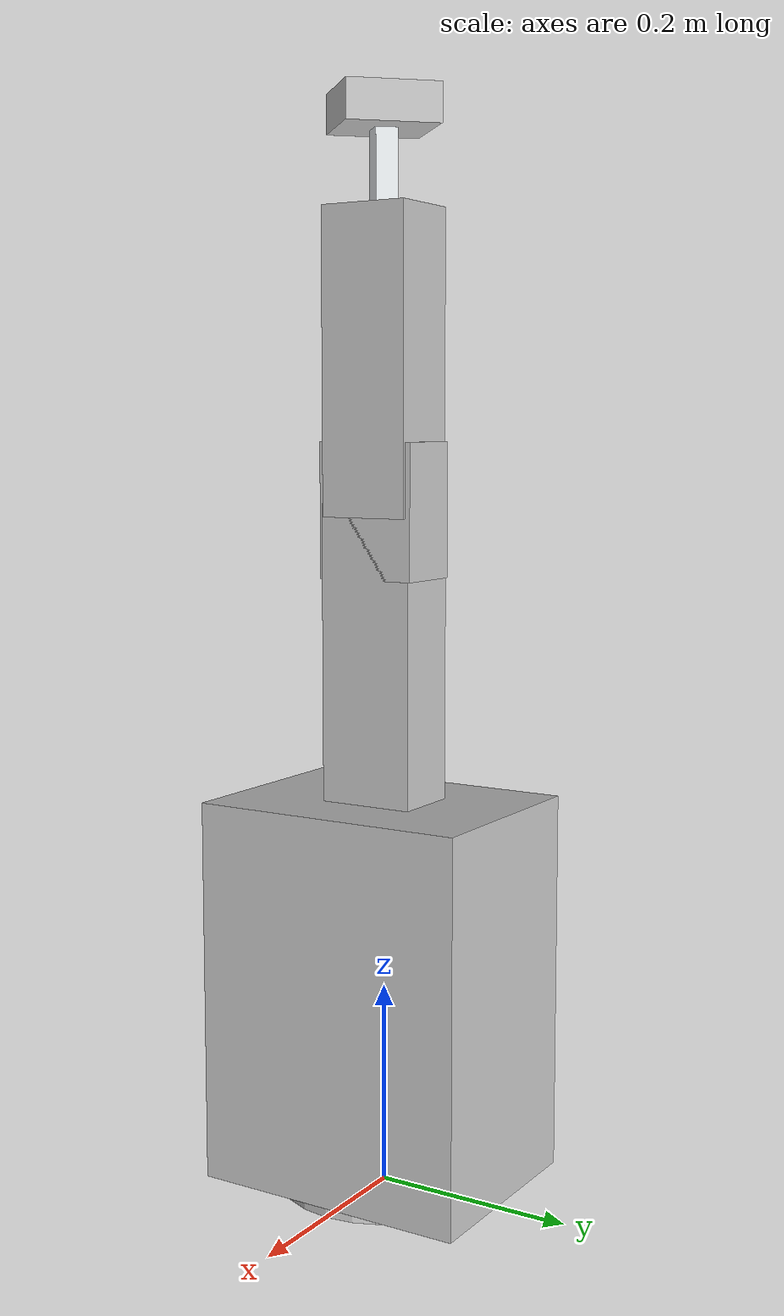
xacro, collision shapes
<?xml version='1.0' encoding='utf-8'?>
<robot name="pi_arm" xmlns:xacro="http://www.ros.org/wiki/xacro">
  <xacro:arg name="backend" default="mock" />
  <xacro:arg name="can_interface" default="can0" />
  <xacro:arg name="bitrate" default="1000000" />
  <xacro:arg name="cable_kinematics_file" default="" />
  <xacro:arg name="calibration_file" default="" />
  <xacro:arg name="allow_real_control" default="false" />
  <link name="base_link">
    <inertial>
      <origin xyz="1.42472010167261E-06 -3.11862123503204E-06 0.0143168199324528" rpy="0 0 0" />
      <mass value="0.437146988968639" />
      <inertia ixx="0.00101549353025633" ixy="-8.85186107150038E-09" ixz="-2.30598700637041E-08" iyy="0.00101550886129705" iyz="5.04809646724767E-08" izz="0.00187640671534589" />
    </inertial>
    <visual>
      <origin xyz="0 0 0" rpy="0 0 0" />
      <geometry>
        <mesh filename="package://pi_arm_description/meshes/base_link.STL" />
      </geometry>
      <material name="">
        <color rgba="0.752941176470588 0.752941176470588 0.752941176470588 1" />
      </material>
    </visual>
    <!-- Collision uses primitives sized from the measured mesh bounding boxes
         plus safety padding; visuals keep the detailed meshes. -->
    <collision>
      <origin xyz="0 0 0.058" rpy="0 0 0" />
      <geometry>
        <cylinder radius="0.105" length="0.116" />
      </geometry>
    </collision>
  </link>
  <link name="link_01">
    <inertial>
      <origin xyz="-0.00282075102215007 -0.00267015187330855 -0.181622628093423" rpy="0 0 0" />
      <mass value="4.85458202644537" />
      <inertia ixx="0.0191507453049761" ixy="2.38055435310266E-06" ixz="4.37834657210041E-05" iyy="0.0309252869482786" iyz="2.25650088980048E-06" izz="0.0145713382885925" />
    </inertial>
    <visual>
      <origin xyz="0 0 0" rpy="0 0 0" />
      <geometry>
        <mesh filename="package://pi_arm_description/meshes/link_01.STL" />
      </geometry>
      <material name="">
        <color rgba="0.752941176470588 0.752941176470588 0.752941176470588 1" />
      </material>
    </visual>
    <collision>
      <origin xyz="0 -0.003 -0.155" rpy="0 0 0" />
      <geometry>
        <box size="0.21 0.28 0.38" />
      </geometry>
    </collision>
  </link>
  <joint name="joint_01" type="revolute">
    <origin xyz="0 0 0.3535" rpy="0 0 0" />
    <parent link="base_link" />
    <child link="link_01" />
    <axis xyz="0 0 1" />
    <limit lower="-3.141592654" upper="3.141592654" effort="20.0" velocity="0.1745329" />
  </joint>
  <link name="link_02">
    <inertial>
      <origin xyz="0.149552387579736 -2.38368135674349E-06 0.000115838118225575" rpy="0 0 0" />
      <mass value="0.252724923080001" />
      <inertia ixx="7.5212562952318E-05" ixy="5.6077092964539E-13" ixz="-4.49687933359973E-14" iyy="0.00209421434394839" iyz="2.77537066267243E-09" izz="0.00215753391787547" />
    </inertial>
    <visual>
      <origin xyz="0 0 0" rpy="0 0 0" />
      <geometry>
        <mesh filename="package://pi_arm_description/meshes/link_02.STL" />
      </geometry>
      <material name="">
        <color rgba="0.752941176470588 0.752941176470588 0.752941176470588 1" />
      </material>
    </visual>
    <collision>
      <origin xyz="0.144 0 0" rpy="0 0 0" />
      <geometry>
        <box size="0.36 0.07 0.096" />
      </geometry>
    </collision>
  </link>
  <joint name="joint_02" type="revolute">
    <origin xyz="0 0 0" rpy="1.5708 -1.5708 0" />
    <parent link="link_01" />
    <child link="link_02" />
    <axis xyz="0 0 1" />
    <!-- Operator-confirmed +/-100.7 deg; packing pose lies on this boundary. -->
    <limit lower="-1.757546556759" upper="1.757546556759" effort="20.0" velocity="0.1745329" />
  </joint>
  <link name="link_03">
    <inertial>
      <origin xyz="0.0322098876561692 -4.02280392154397E-05 0.00206169265337586" rpy="0 0 0" />
      <mass value="0.185861917056894" />
      <inertia ixx="4.50771310773376E-05" ixy="2.57293516949686E-14" ixz="-2.926245359696E-14" iyy="9.13136227274224E-05" iyz="1.39667484142062E-09" izz="0.000123174175509638" />
    </inertial>
    <visual>
      <origin xyz="0 0 0" rpy="3.14159265 0 0" />
      <geometry>
        <mesh filename="package://pi_arm_description/meshes/link_03.STL" />
      </geometry>
      <material name="">
        <color rgba="0.752941176470588 0.752941176470588 0.752941176470588 1" />
      </material>
    </visual>
    <collision>
      <origin xyz="0.0295 0 0" rpy="0 0 0" />
      <geometry>
        <box size="0.13 0.07 0.10" />
      </geometry>
    </collision>
  </link>
  <joint name="joint_03" type="revolute">
    <origin xyz="0.288 0 0" rpy="0 0 0" />
    <parent link="link_02" />
    <child link="link_03" />
    <axis xyz="0 0 1" />
    <mimic joint="joint_04" multiplier="1.0" offset="0.0" />
    <limit lower="-1.494001839708" upper="1.494001839708" effort="20.0" velocity="0.1745329" />
  </joint>
  <link name="link_04">
    <inertial>
      <origin xyz="0.109964336929613 0.000229257464003596 0.000975015270539004" rpy="0 0 0" />
      <mass value="0.260875641620697" />
      <inertia ixx="7.01626086374675E-05" ixy="6.34918048907996E-10" ixz="-7.24863801376475E-08" iyy="0.000872456719719079" iyz="1.41337794056613E-08" izz="0.00088511392160595" />
    </inertial>
    <visual>
      <origin xyz="0 0 0" rpy="0 0 0" />
      <geometry>
        <mesh filename="package://pi_arm_description/meshes/link_04.STL" />
      </geometry>
      <material name="">
        <color rgba="0.752941176470588 0.752941176470588 0.752941176470588 1" />
      </material>
    </visual>
    <collision>
      <origin xyz="0.1094 0 0" rpy="0 0 0" />
      <geometry>
        <box size="0.29 0.076 0.09" />
      </geometry>
    </collision>
  </link>
  <joint name="joint_04" type="revolute">
    <origin xyz="0.0591 0 0" rpy="0 0 0" />
    <parent link="link_03" />
    <child link="link_04" />
    <axis xyz="0 0 1" />

    <!-- Operator-confirmed +/-85.6 deg; joint_03 mimics these limits. -->
    <limit lower="-1.494001839708" upper="1.494001839708" effort="20.0" velocity="0.1745329" />
  </joint>
  <link name="link_05">
    <inertial>
      <origin xyz="1.52202694891912E-11 -2.40738648105143E-06 -9.86147092207901E-07" rpy="0 0 0" />
      <mass value="0.000795424297196668" />
      <inertia ixx="3.07601969712487E-08" ixy="2.04491722309632E-17" ixz="-1.27781598366501E-15" iyy="1.77753013126899E-08" iyz="-3.01352534695745E-17" izz="1.7775236560225E-08" />
    </inertial>
    <visual>
      <origin xyz="0 0 0" rpy="0 0 0" />
      <geometry>
        <mesh filename="package://pi_arm_description/meshes/link_05.STL" />
      </geometry>
      <material name="">
        <color rgba="0.698039215686274 0.698039215686274 0.698039215686274 1" />
      </material>
    </visual>
    <collision>
      <origin xyz="0 0 0" rpy="0 1.5708 0" />
      <geometry>
        <cylinder radius="0.011" length="0.012" />
      </geometry>
    </collision>
  </link>
  <joint name="joint_05" type="revolute">
    <origin xyz="0.246 0 0" rpy="2.3562 0 0" />
    <parent link="link_04" />
    <child link="link_05" />
    <axis xyz="0 -1 0" />
    <limit lower="-0.523598776" upper="0.523598776" effort="10.0" velocity="0.1745329" />
  </joint>
  <link name="link_06">
    <inertial>
      <origin xyz="0.0534997515262439 -9.86578358341816E-07 2.34103792068341E-06" rpy="0 0 0" />
      <mass value="0.00635902715305591" />
      <inertia ixx="1.97178946260881E-07" ixy="-1.95938273796978E-12" ixz="-9.13341802615157E-12" iyy="5.52128514263102E-06" iyz="1.47019412241404E-12" izz="5.55951898659673E-06" />
    </inertial>
    <visual>
      <origin xyz="0 0 0" rpy="0 0 0" />
      <geometry>
        <mesh filename="package://pi_arm_description/meshes/link_06.STL" />
      </geometry>
      <material name="">
        <color rgba="0.898039215686275 0.917647058823529 0.929411764705882 1" />
      </material>
    </visual>
    <collision>
      <origin xyz="0.0535 0 0" rpy="0 0 0" />
      <geometry>
        <box size="0.12 0.028 0.021" />
      </geometry>
    </collision>
  </link>
  <joint name="joint_06" type="revolute">
    <origin xyz="0 0 0" rpy="1.5708 0 0" />
    <parent link="link_05" />
    <child link="link_06" />
    <axis xyz="0 1 0" />
    <limit lower="-1.047197551" upper="1.047197551" effort="10.0" velocity="0.1745329" />
  </joint>
  <link name="link_07">
    <inertial>
      <origin xyz="-1.52193813107715E-11 1.00472616182401E-06 2.38879559871785E-06" rpy="0 0 0" />
      <mass value="0.000795424297196684" />
      <inertia ixx="3.0760196971249E-08" ixy="2.04490912920935E-17" ixz="1.27781600766383E-15" iyy="1.77753013126897E-08" iyz="3.01352307221077E-17" izz="1.77752365602258E-08" />
    </inertial>
    <visual>
      <origin xyz="0 0 0" rpy="0 0 0" />
      <geometry>
        <mesh filename="package://pi_arm_description/meshes/link_07.STL" />
      </geometry>
      <material name="">
        <color rgba="0.698039215686274 0.698039215686274 0.698039215686274 1" />
      </material>
    </visual>
    <collision>
      <origin xyz="0 0 0" rpy="0 1.5708 0" />
      <geometry>
        <cylinder radius="0.011" length="0.012" />
      </geometry>
    </collision>
  </link>
  <joint name="joint_07" type="revolute">
    <origin xyz="0.107 0 0" rpy="0 0 3.1416" />
    <parent link="link_06" />
    <child link="link_07" />
    <axis xyz="0 -1 0" />
    <mimic joint="joint_06" multiplier="1.0" offset="0.0" />
    <limit lower="-1.047197551" upper="1.047197551" effort="10.0" velocity="0.1745329" />
  </joint>
  <link name="link_08">
    <inertial>
      <origin xyz="6.45345202288095E-05 -0.00794952282624428 -6.86960518130331E-05" rpy="0 0 0" />
      <mass value="0.03183181506874" />
      <inertia ixx="1.54470582945015E-05" ixy="-1.66181016644539E-08" ixz="-1.48500112235224E-10" iyy="2.96703522408273E-05" iyz="1.63865535609975E-08" izz="1.54636258641674E-05" />
    </inertial>
    <visual>
      <origin xyz="0 0 0" rpy="0 0 3.14159265" />
      <geometry>
        <mesh filename="package://pi_arm_description/meshes/link_08.STL" />
      </geometry>
      <material name="">
        <color rgba="0.752941176470588 0.752941176470588 0.752941176470588 1" />
      </material>
    </visual>
    <collision>
      <origin xyz="0 -0.0107 0" rpy="0 0 0" />
      <geometry>
        <box size="0.09 0.037 0.09" />
      </geometry>
    </collision>
  </link>
  <joint name="joint_08" type="revolute">
    <origin xyz="0 0 0" rpy="1.5708 -1.5708 0" />
    <parent link="link_07" />
    <child link="link_08" />
    <axis xyz="-1 0 0" />
    <mimic joint="joint_05" multiplier="-1.0" offset="0.0" />
    <limit lower="-0.523598776" upper="0.523598776" effort="10.0" velocity="0.1745329" />
  </joint>
  <link name="link_09">
    <inertial>
      <origin xyz="0 0 -0.00287664156279077" rpy="0 0 0" />
      <mass value="0.0306315731211391" />
      <inertia ixx="1.21222052001753E-05" ixy="-8.470329472543E-22" ixz="5.28439432408367E-20" iyy="1.21222052001753E-05" iyz="3.3381814248124E-20" izz="2.40376035328779E-05" />
    </inertial>
    <visual>
      <origin xyz="0 0 0.022" rpy="0 0 0" />
      <geometry>
        <mesh filename="package://pi_arm_description/meshes/link_09.STL" />
      </geometry>
      <material name="">
        <color rgba="0.792156862745098 0.819607843137255 0.933333333333333 1" />
      </material>
    </visual>
    <collision>
      <origin xyz="0 0 -0.002" rpy="0 0 0" />
      <geometry>
        <cylinder radius="0.044" length="0.012" />
      </geometry>
    </collision>
  </link>
  <joint name="joint_09" type="revolute">
    <origin xyz="0 0 0" rpy="1.5708 0 3.1416" />
    <parent link="link_08" />
    <child link="link_09" />
    <axis xyz="0 0 1" />
    <limit lower="-3.141592654" upper="3.141592654" effort="10.0" velocity="0.1745329" />
  </joint>
  <link name="tool0" />
  <joint name="tool0_fixed_joint" type="fixed">
    <parent link="link_09" />
    <child link="tool0" />
    <origin xyz="0 0 0.022" rpy="0 0 0" />
  </joint>
  <ros2_control name="PiArmSystem" type="system">
    <hardware>
      <plugin>pi_arm_hardware/PiArmSystemHardware</plugin>
      <param name="backend">$(arg backend)</param>
      <param name="can_interface">$(arg can_interface)</param>
      <param name="bitrate">$(arg bitrate)</param>
      <param name="cable_kinematics_file">$(arg cable_kinematics_file)</param>
      <param name="calibration_file">$(arg calibration_file)</param>
      <param name="allow_real_control">$(arg allow_real_control)</param>
      <param name="moving_speed_threshold_rad_s">0.00017453292519943296</param>
      <param name="state_stale_timeout_sec">1.0</param>
    </hardware>
    <joint name="joint_01">
      <param name="motor_id">1</param>
      <param name="protocol_angle_ratio">36</param>
      <param name="motor_direction">1</param>
      <command_interface name="position" />
      <command_interface name="velocity" />
      <state_interface name="position">
        <param name="initial_value">0.0</param>
      </state_interface>
      <state_interface name="velocity" />
    </joint>
    <joint name="joint_02">
      <param name="motor_id">2</param>
      <param name="protocol_angle_ratio">36</param>
      <param name="motor_direction">1</param>
      <!-- Feedback-only +/-3 deg allowance; command limits remain above. -->
      <param name="feedback_position_tolerance_rad">0.05235987755982989</param>
      <command_interface name="position" />
      <command_interface name="velocity" />
      <state_interface name="position">
        <param name="initial_value">0.0</param>
      </state_interface>
      <state_interface name="velocity" />
    </joint>
    <joint name="joint_04">
      <param name="motor_id">3</param>
      <param name="protocol_angle_ratio">36</param>
      <param name="motor_direction">-1</param>
      <param name="feedback_position_tolerance_rad">0.05235987755982989</param>
      <command_interface name="position" />
      <command_interface name="velocity" />
      <state_interface name="position">
        <param name="initial_value">0.0</param>
      </state_interface>
      <state_interface name="velocity" />
    </joint>
    <joint name="joint_05">
      <param name="motor_id">4</param>
      <param name="protocol_angle_ratio">6</param>
      <param name="motor_direction">-1</param>
      <command_interface name="position" />
      <command_interface name="velocity" />
      <state_interface name="position">
        <param name="initial_value">0.0</param>
      </state_interface>
      <state_interface name="velocity" />
    </joint>
    <joint name="joint_06">
      <param name="motor_id">5</param>
      <param name="protocol_angle_ratio">6</param>
      <param name="motor_direction">-1</param>
      <command_interface name="position" />
      <command_interface name="velocity" />
      <state_interface name="position">
        <param name="initial_value">0.0</param>
      </state_interface>
      <state_interface name="velocity" />
    </joint>
    <joint name="joint_09">
      <param name="motor_id">6</param>
      <param name="protocol_angle_ratio">6</param>
      <param name="motor_direction">1</param>
      <command_interface name="position" />
      <command_interface name="velocity" />
      <state_interface name="position">
        <param name="initial_value">0.0</param>
      </state_interface>
      <state_interface name="velocity" />
    </joint>
  </ros2_control>
</robot>
